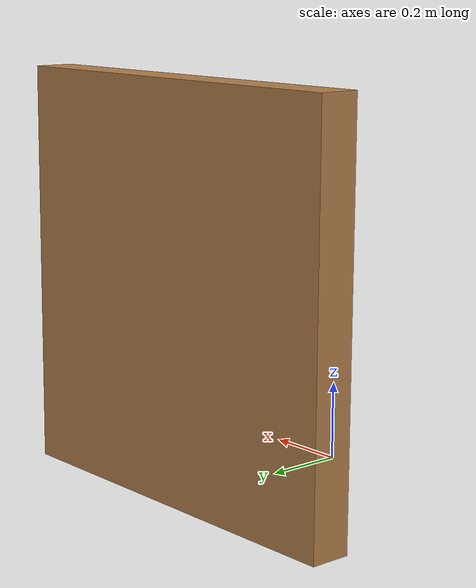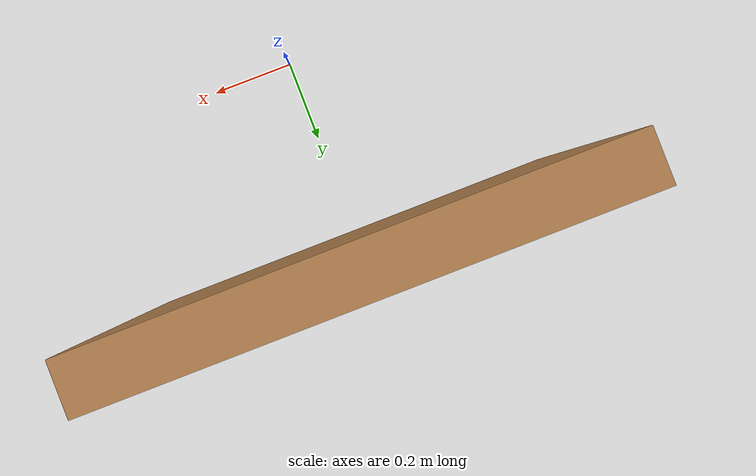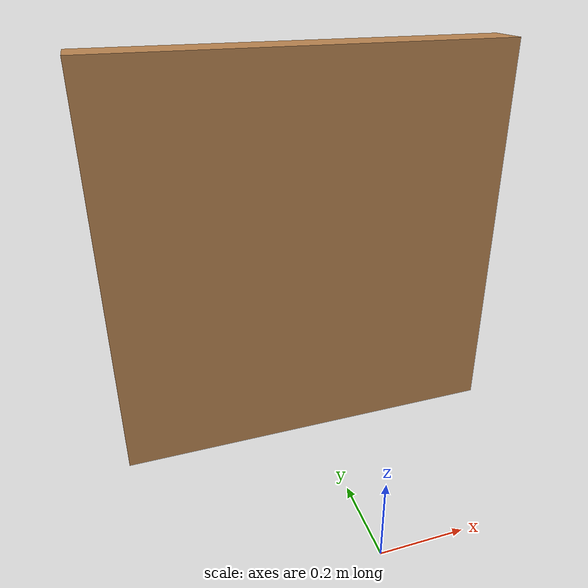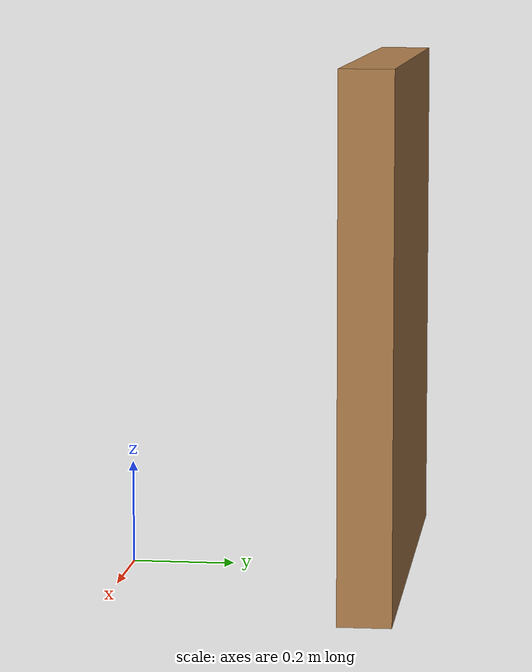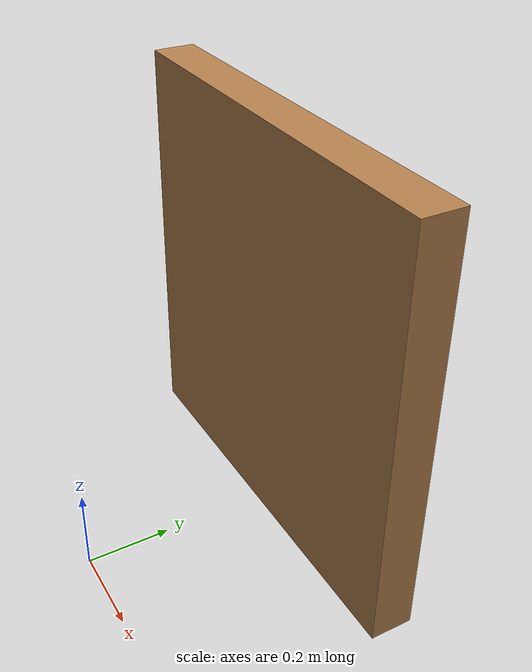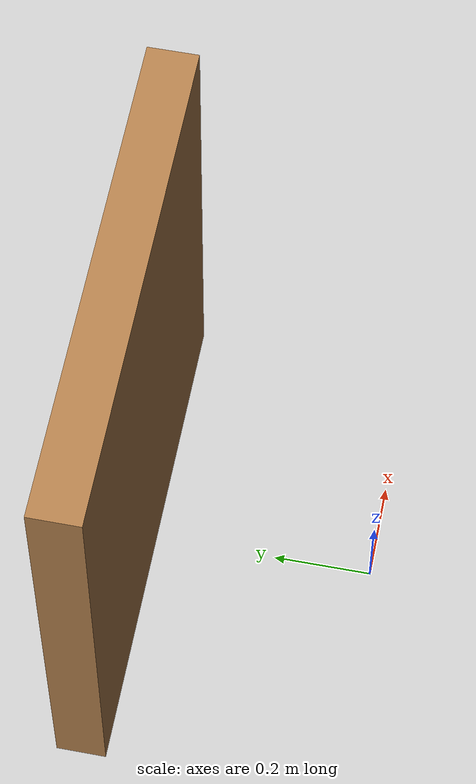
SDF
<?xml version='1.0'?>
<sdf version="1.5">
  <model name="cube">
    <static>true</static>
    <link name="link">
      <pose>0 0.5 0.5 0 0 0</pose>
      <collision name="collision">
        <geometry>
          <box>
            <size>1 0.1 1</size>
          </box>
        </geometry>
      </collision>
      <visual name="visual">
        <geometry>
          <box>
            <size>1 0.1 1</size>
          </box>
        </geometry>
        <material>
          <diffuse>0.25 0.25 0.25 1</diffuse>
          <script>
            <uri>../../media/materials/scripts/my.material</uri>
            <name>wood</name>
          </script>
        </material>
      </visual>
    </link>
  </model>
</sdf>
